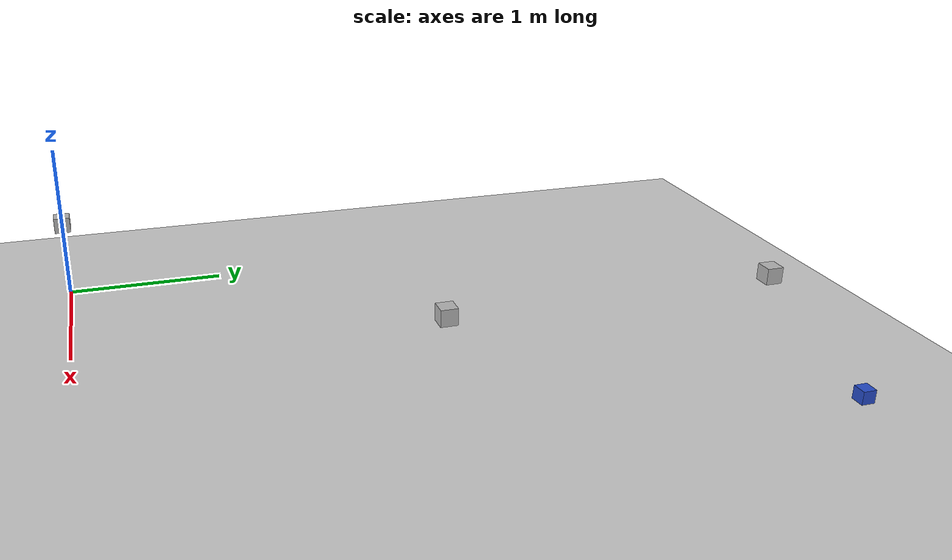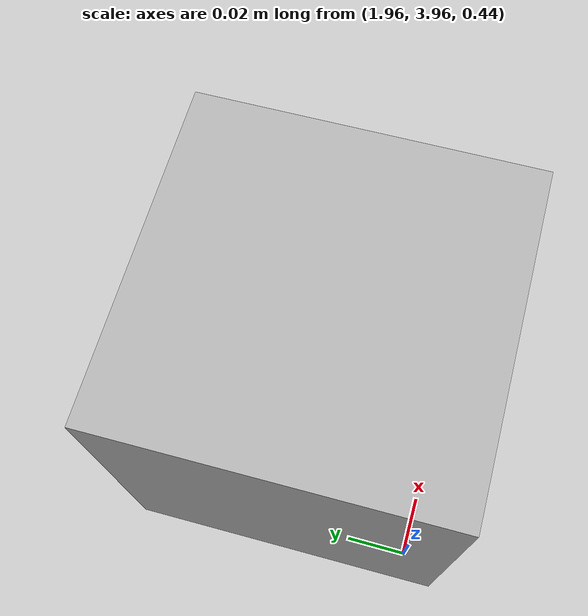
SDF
<sdf version="1.4">
 <world name="default">
  <include><uri>model://ground_plane</uri></include>
  <include><uri>model://sun</uri></include>
  <include><uri>model://demo_cube</uri><pose>3.8 3.15 0.83 0 0 0</pose></include>
  <model name="box1">
   <link name="link">
    <pose>2 4 0.5 0 0 0</pose>
    <collision name="box_collision"><geometry><box><size>0.1 0.1 0.1</size></box></geometry></collision>
    <visual name="visual"><geometry><box><size>0.1 0.1 0.1</size></box></geometry></visual>
    <sensor name="cogrob_wireless_transmitter" type="wireless_transmitter">
     <plugin name="wifi_router_plugin" filename="libwifirouter.so"/>
     <always_on>1</always_on>
     <update_rate>1</update_rate>
     <visualize>true</visualize>
     <transceiver>
      <essid>CogRob_1</essid>
      <frequency>2442.0</frequency>
      <power>14.5</power>
      <gain>2.6</gain>
     </transceiver>
    </sensor>
   </link>
  </model>
  <model name="box2">
   <link name="link">
    <pose>2 2 0.5 0 0 0</pose>
    <collision name="box_collision"><geometry><box><size>0.1 0.1 0.1</size></box></geometry></collision>
    <visual name="visual"><geometry><box><size>0.1 0.1 0.1</size></box></geometry></visual>
    <sensor name="cogrob_wireless_transmitter" type="wireless_transmitter">
     <plugin name="wifi_router_plugin" filename="libwifirouter.so"/>
     <always_on>1</always_on>
     <update_rate>1</update_rate>
     <visualize>true</visualize>
     <transceiver>
      <essid>CogRob_2</essid>
      <frequency>2440.0</frequency>
      <power>10.0</power>
      <gain>3</gain>
     </transceiver>
    </sensor>
   </link>
  </model>
  <model name="box3">
   <link name="link">
    <pose>0 0 0.5 0 0 0</pose>
    <collision name="box_collision"><geometry><box><size>0.1 0.1 0.1</size></box></geometry></collision>
    <visual name="visual"><geometry><box><size>0.1 0.1 0.1</size></box></geometry></visual>
    <sensor name="cogrob_wireless_transmitter" type="wireless_transmitter">
     <plugin name="wifi_router_plugin" filename="libwifirouter.so"/>
     <always_on>1</always_on>
     <update_rate>1</update_rate>
     <visualize>true</visualize>
     <transceiver>
      <essid>CogRob_3</essid>
      <frequency>2440.0</frequency>
      <power>10.0</power>
      <gain>3</gain>
     </transceiver>
    </sensor>
   </link>
  </model>
 </world>
</sdf>

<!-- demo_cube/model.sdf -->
<sdf version='1.6'>
  <model name="demo_cube">
      <static>0</static>
      <link name='link'>
        <inertial>
          <mass>0.25</mass>
          <inertia>
            <ixx>0.001</ixx>
            <ixy>0.000000</ixy>
            <ixz>0.000000</ixz>
            <iyy>0.001</iyy>
            <iyz>0.000000</iyz>
            <izz>0.001</izz>
          </inertia>
        </inertial>
        <collision name='collision'>
          <geometry>
            <box>
              <size>0.060 0.060 0.060</size>
            </box>
          </geometry>
          <surface>
            <friction>
              <ode>
                <mu>30.0</mu>
                <mu2>30.0</mu2>
              </ode>
            </friction>
            <contact>
              <ode>
                <kp>1000000.0</kp>
                <kd>100.0</kd>
                <max_vel>1.0</max_vel>
                <min_depth>0.002</min_depth>
              </ode>
            </contact>
          </surface>
        </collision>
        <visual name='visual'>
          <geometry>
            <box>
              <size>0.060 0.060 0.060</size>
            </box>
          </geometry>
          <material>
            <script>
              <uri>file://media/materials/scripts/gazebo.material</uri>
              <name>Gazebo/Blue</name>
            </script>
          </material>
        </visual>
        <velocity_decay>
          <linear>0.000000</linear>
          <angular>0.000000</angular>
        </velocity_decay>
        <self_collide>0</self_collide>
        <kinematic>0</kinematic>
        <gravity>1</gravity>
      </link>
  </model>
</sdf>
